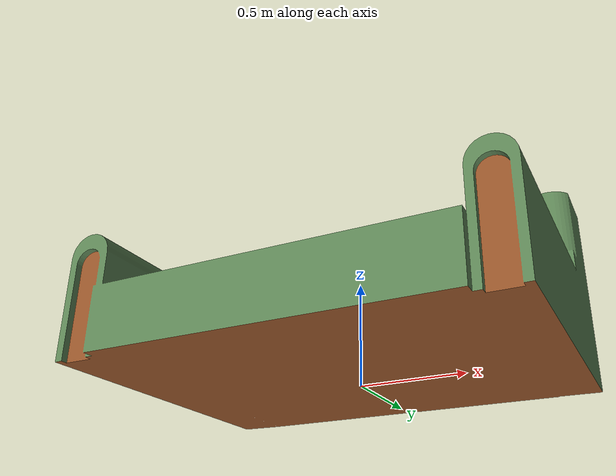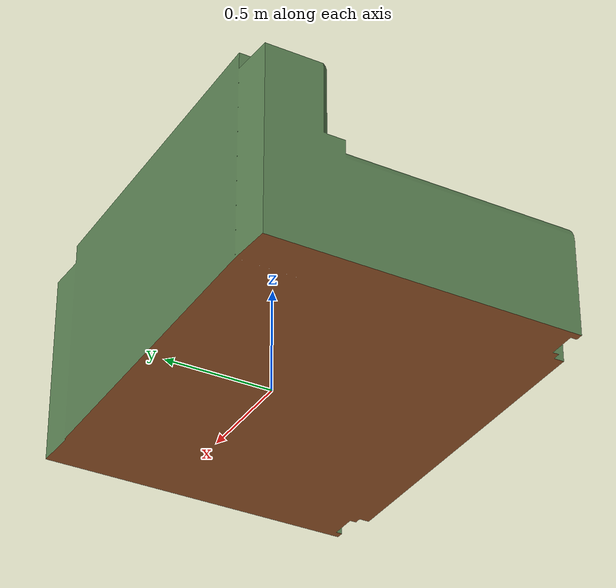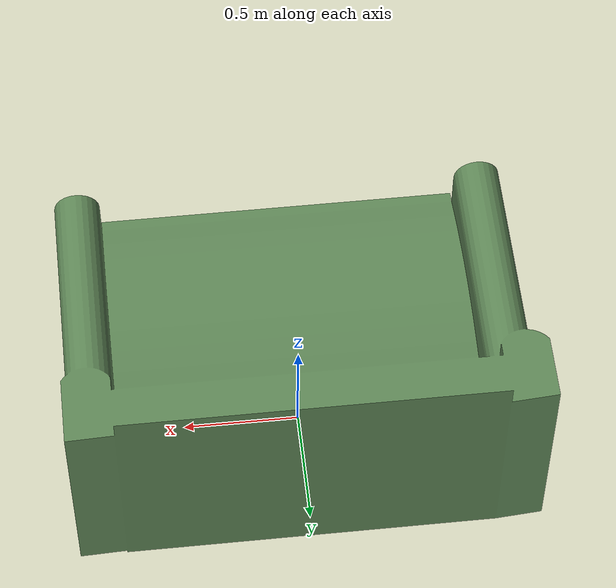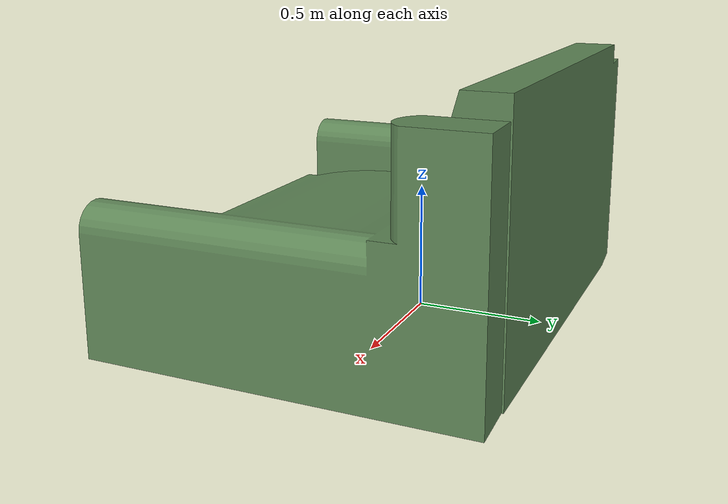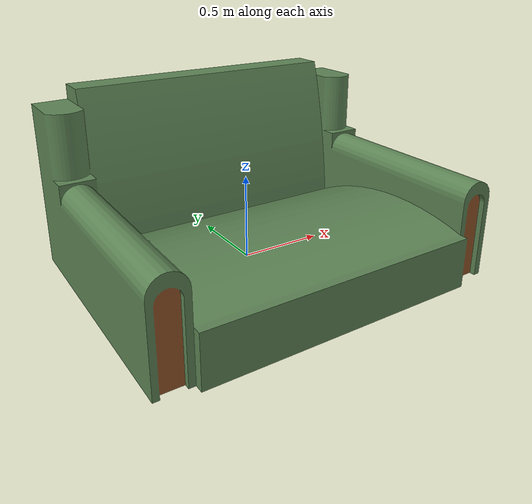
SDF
<?xml version="1.0" ?>
<sdf version="1.5">
  <model name="sofa_green_1">
    <link name="link">
      <pose>0 0 0 0 0 0</pose>
      <collision name="collision">
        <geometry>
          <mesh>
            <uri>model://sofa_green_1/meshes/model.dae</uri>
          </mesh>
        </geometry>
      </collision>
      <visual name="visual">
        <geometry>
          <mesh>
            <uri>model://sofa_green_1/meshes/model.dae</uri>
          </mesh>
        </geometry>
      </visual>
    </link>
    <static>1</static>
  </model>
</sdf>
